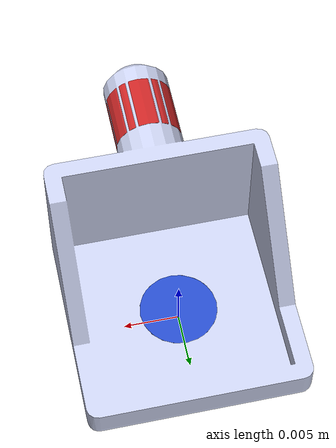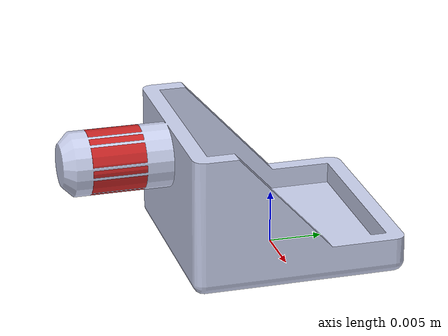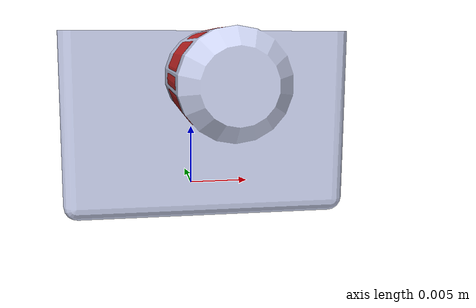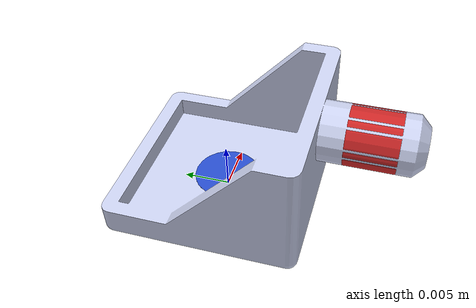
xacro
<?xml version="1.0"?>
<robot name="122620" xmlns:xacro="http://www.ros.org/wiki/xacro">
	<xacro:include filename="$(find object_description)/chair_urdf/122620.SLDPRT.urdf"/>
	<xacro:include filename="$(find object_description)/chair_xacro/for_assemble_macro.xacro"/>

	<xacro:property name="x_offset" value="0.0"/>
	<xacro:property name="y_offset" value="0.0"/>
	<xacro:property name="z_offset" value="0.0"/>

	<xacro:shaft_definition link_name="shaft_1"
							length="0.005"
							radius="0.003"
							x="${0.0 + x_offset}" y="${-0.015 + y_offset}" z="${0.01 + z_offset}"
							rx="${pi/2}" ry="0" rz="0"
							parent="122620.SLDPRT"/>

	<xacro:hole_definition link_name="hole_1"
							length="0.0015"
							radius="0.0035"
							x="${0.0 + x_offset}" y="${0.0 + y_offset}" z="${0.00075 + z_offset}"
							rx="0" ry="0" rz="0"
							parent="122620.SLDPRT"/>

</robot>

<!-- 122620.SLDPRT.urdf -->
<robot
  name="122620.SLDPRT">
  <link
    name="122620.SLDPRT">
    <inertial>
      <origin
        xyz="9.2811E-19 -0.0050594 0.0049698"
        rpy="-1.5707963267949 0 0" />
      <mass
        value="0.001497" />
      <inertia
        ixx="1.1097E-07"
        ixy="-3.8314E-24"
        ixz="-5.6361E-24"
        iyy="1.4305E-07"
        iyz="3.1662E-08"
        izz="8.3604E-08" />
    </inertial>
    <visual>
      <origin
        xyz="0 0 0"
        rpy="0 0 0" />
      <geometry>
        <mesh
          filename="package://object_description/chair_meshes/122620.SLDPRT.STL" />
      </geometry>
      <material
        name="">
        <color
          rgba="0.79216 0.81961 0.93333 1" />
        <texture
          filename="package://object_description/textures/" />
      </material>
    </visual>
    <collision>
      <origin
        xyz="0 0 0"
        rpy="0 0 0" />
      <geometry>
        <mesh
          filename="package://object_description/chair_meshes/122620.SLDPRT.STL" />
      </geometry>
    </collision>
  </link>
	<gazebo reference="122620.SLDPRT">
    <material>Gazebo/White</material>
    <kp>100000.0</kp>
    <kd>1.0</kd>
    <mu1>100000</mu1>
    <mu2>100000</mu2>
    <maxVel>0</maxVel>
    <minDepth>0.000</minDepth>
  </gazebo>
</robot>

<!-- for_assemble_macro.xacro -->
<robot xmlns:xacro="http://wiki.ros.org/xacro">

	<xacro:macro name="hole_definition" params="link_name
												length radius
												x y z rx ry rz
												parent">
		<link name="${link_name}">
			<visual>
				<origin xyz="0 0 0" rpy="0 0 0"/>
				<geometry>
					<cylinder length="${length}" radius="${radius}"/>
				</geometry>
			</visual>
		</link>

		<joint name="${link_name}_joint" type="fixed">
			<origin xyz="${x} ${y} ${z}" rpy="${rx} ${ry} ${rz}"/>
			<parent link="${parent}"/>
			<child link="${link_name}"/>
		</joint>

		<gazebo reference="${link_name}">
			<material>Gazebo/Blue</material>
		</gazebo>
	</xacro:macro>

	<xacro:macro name="shaft_definition" params="link_name
												length radius
												x y z rx ry rz
												parent">
		<link name="${link_name}">
			<visual>
				<origin xyz="0 0 0" rpy="0 0 0"/>
				<geometry>
					<cylinder length="${length}" radius="${radius}"/>
				</geometry>
			</visual>
		</link>

		<joint name="${link_name}_joint" type="fixed">
			<origin xyz="${x} ${y} ${z}" rpy="${rx} ${ry} ${rz}"/>
			<parent link="${parent}"/>
			<child link="${link_name}"/>
		</joint>

		<gazebo reference="${link_name}">
			<material>Gazebo/Red</material>
		</gazebo>
	</xacro:macro>

	<xacro:macro name="surface_definition" params="link_name
												   box_x box_y box_z
												   x y z rx ry rz
												   parent">
		<link name="${link_name}">
			<visual>
				<origin xyz="0 0 0" rpy="0 0 0"/>
				<geometry>
					<box size="${box_x} ${box_y} ${box_z}"/>
				</geometry>
			</visual>
		</link>

		<joint name="${link_name}_joint" type="fixed">
			<origin xyz="${x} ${y} ${z}" rpy="${rx} ${ry} ${rz}"/>
			<parent link="${parent}"/>
			<child link="${link_name}"/>
		</joint>

		<gazebo reference="${link_name}">
			<material>Gazebo/Green</material>
		</gazebo>
	</xacro:macro>

</robot>
